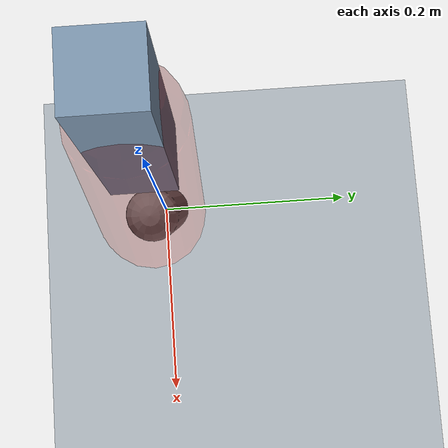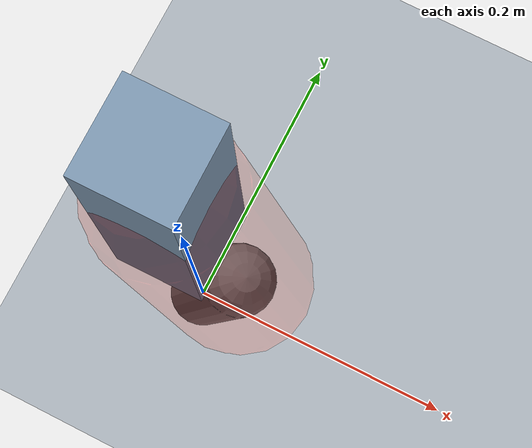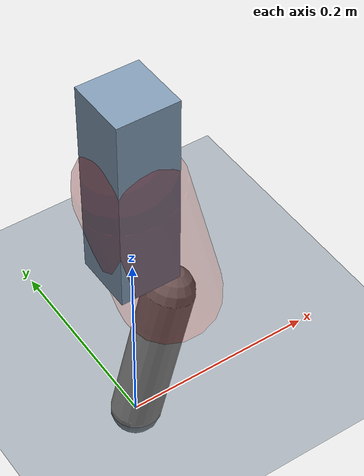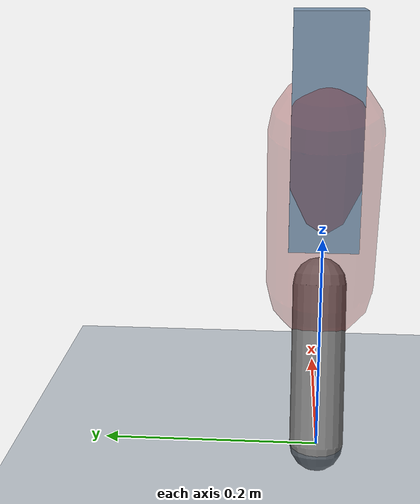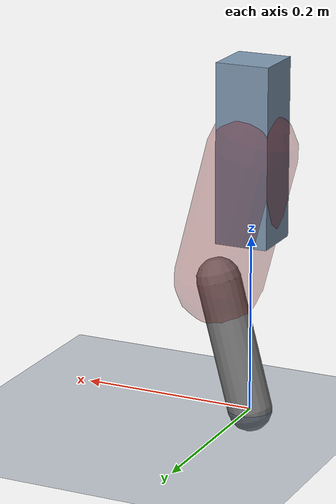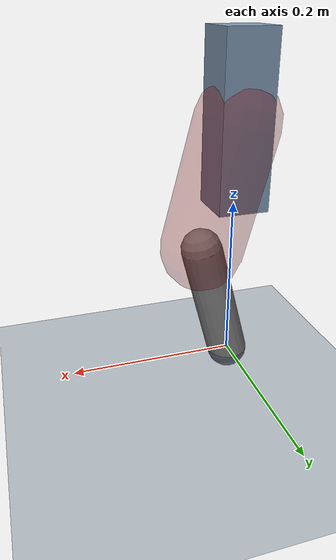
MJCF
<mujoco model="Hopper2D">
	<compiler inertiafromgeom="true" angle="radian" />
	<option timestep="0.001" integrator="implicit" cone="elliptic" solver="Newton" tolerance="1e-10" />

	<default>
		<geom contype="1" conaffinity="1" condim="3" friction="2 0.005 0.0001" solref="0.005 1" />
		<joint limited="true" damping="0.1" />
	</default>

	<asset>
		<texture name="skybox" type="skybox" builtin="gradient" rgb1=".4 .6 .8" rgb2="0 0 0" width="800" height="800" />
		<texture name="grid" type="2d" builtin="checker" rgb1=".1 .2 .3" rgb2=".2 .3 .4" width="300" height="300" mark="edge" markrgb=".2 .3 .4" />
		<material name="ground" texture="grid" texrepeat="1 1" texuniform="true" reflectance="0.1" />
		<material name="leg" rgba="0.5 0.6 0.7 1" />
	</asset>

	<worldbody>

		<geom name="floor" type="plane" size="5 5 0.25" material="ground" />

		<light directional="false" diffuse="0.8 0.8 0.8" specular="0.3 0.3 0.3" pos="0 0 2" dir="0 0 -1" />
		<light mode="targetbodycom" target="base" directional="false" diffuse="0.8 0.8 0.8" specular="0.3 0.3 0.3" pos="0 0 2" dir="0 0 -1" />

		<camera name="fixed" pos="0 -2 1" xyaxes="1 0 0 0 0 1" />
		<camera name="tracking" mode="trackcom" pos="0 -3 1" />

		<body name="root" pos="0 0 0.29667148191415027">
			<joint name="slide_x" type="slide" axis="1 0 0" range="-100 100" />
			<joint name="slide_z" type="slide" axis="0 0 1" range="0 10" />

			<body name="base" pos="0 0 0">
				<geom name="torso" type="box" size="0.03 0.03 0.1" mass="2.393" material="leg" />

				<body name="link1" pos="0 0 0" euler="0 1.3185693826227438 0">
					<joint type="hinge" axis="0 -1 0" pos="0 0 0" name="hinge1" limited="true" range="-3.14 3.14" stiffness="0" damping="0.1" />
					<geom name="thigh" type="capsule" fromto="0 0 0 0.15560533119589115 0 0" size="0.05" rgba="0.5 0 0 0.3" mass="0.6217922617505497" />

					<body name="link2" pos="0.15560533119589115 0 0" euler="0 0.5122054471378947 0">
						<joint type="hinge" axis="0 -1 0" pos="0 0 0" name="hinge2" limited="true" range="-3.14 3.14" stiffness="0" damping="0.1" />
						<geom name="shank" type="capsule" fromto="0 0 0 0.1510661507182591 0 0" size="0.025" mass="0.35865953564643316" />

					</body>
				</body>
			</body>
		</body>
	</worldbody>

	<actuator>
		<motor name="torque1" joint="hinge1" ctrlrange="-83.1386071886906 83.1386071886906" ctrllimited="true" gear="1" />
		<motor name="torque2" joint="hinge2" ctrlrange="-22.290130275884643 22.290130275884643" ctrllimited="true" gear="1" />
	</actuator>
</mujoco>
